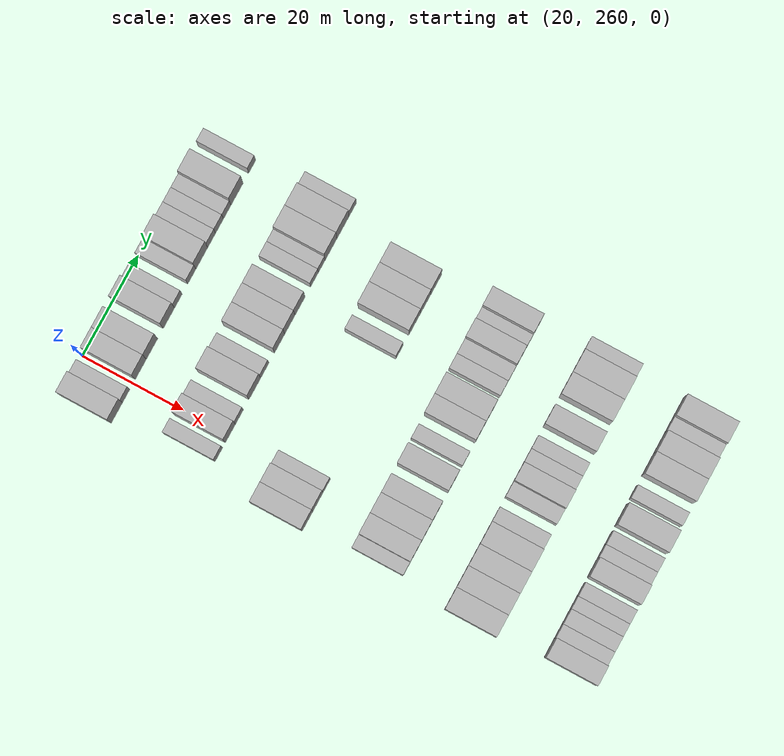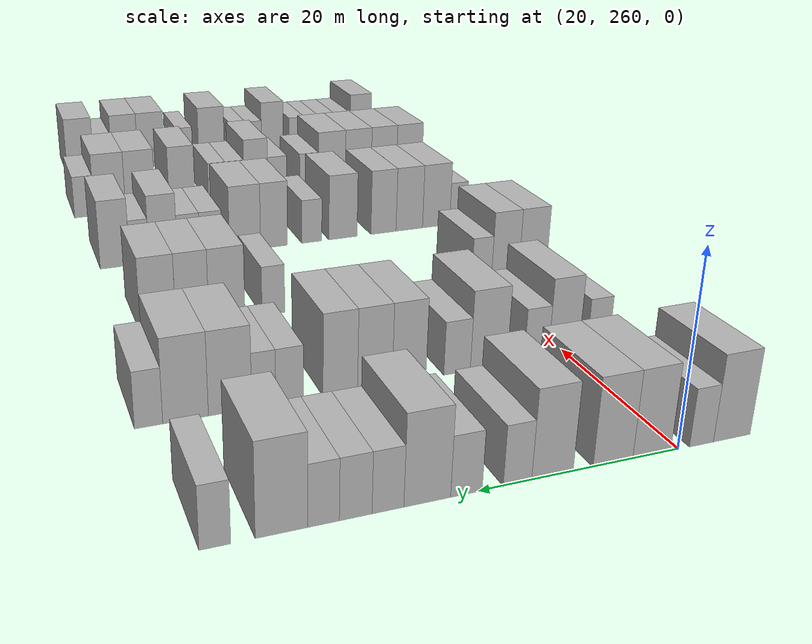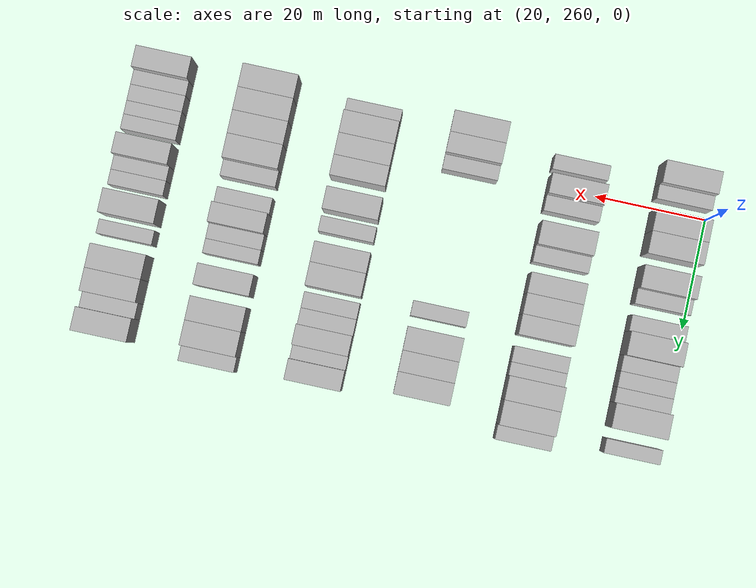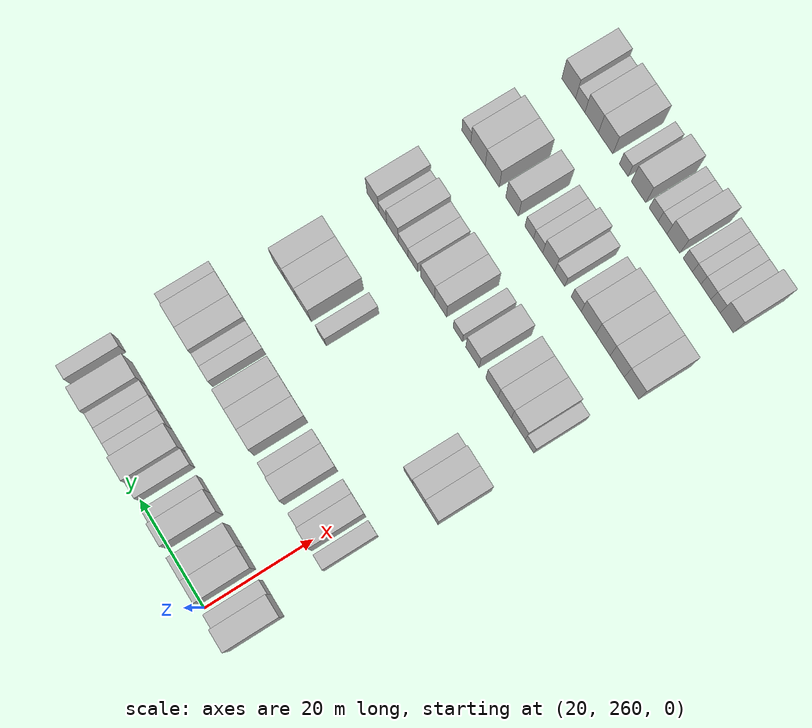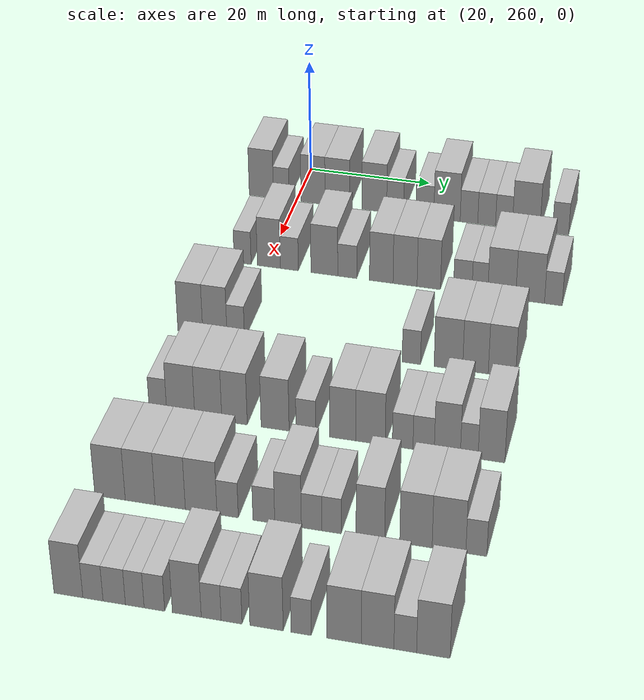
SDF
<sdf version="1.6">
 <world name="default">
  <model name="building_156">
   <static>1</static>
   <pose>25.0000 254.1607 0 0.000000 0.000000 0.000000</pose>
   <link name="link">
    <pose>0 0 4.50 0 0 0</pose>
    <collision name="collision"><geometry><box><size>10.0000 4.0426 9.0000</size></box></geometry></collision>
    <visual name="visual">
     <cast_shadows>0</cast_shadows>
     <geometry><box><size>10.0000 4.0426 9.0000</size></box></geometry>
     <material>
      <script>
       <uri>model://HANNAS_wall/materials/scripts</uri>
       <uri>model://HANNAS_wall/materials/textures</uri>
       <name>vrc/HANNAS_wall</name>
      </script>
     </material>
    </visual>
   </link>
  </model>
  <model name="building_157">
   <static>1</static>
   <pose>25.0000 257.4823 0 0.000000 0.000000 0.000000</pose>
   <link name="link">
    <pose>0 0 3.00 0 0 0</pose>
    <collision name="collision"><geometry><box><size>10.0000 2.6005 6.0000</size></box></geometry></collision>
    <visual name="visual">
     <cast_shadows>0</cast_shadows>
     <geometry><box><size>10.0000 2.6005 6.0000</size></box></geometry>
     <material>
      <script>
       <uri>model://HANNAS_wall/materials/scripts</uri>
       <uri>model://HANNAS_wall/materials/textures</uri>
       <name>vrc/HANNAS_wall</name>
      </script>
     </material>
    </visual>
   </link>
  </model>
  <model name="building_158">
   <static>1</static>
   <pose>25.0000 262.7792 0 0.000000 0.000000 0.000000</pose>
   <link name="link">
    <pose>0 0 4.50 0 0 0</pose>
    <collision name="collision"><geometry><box><size>10.0000 3.9933 9.0000</size></box></geometry></collision>
    <visual name="visual">
     <cast_shadows>0</cast_shadows>
     <geometry><box><size>10.0000 3.9933 9.0000</size></box></geometry>
     <material>
      <script>
       <uri>model://HANNAS_wall/materials/scripts</uri>
       <uri>model://HANNAS_wall/materials/textures</uri>
       <name>vrc/HANNAS_wall</name>
      </script>
     </material>
    </visual>
   </link>
  </model>
  <model name="building_159">
   <static>1</static>
   <pose>25.0000 266.8119 0 0.000000 0.000000 0.000000</pose>
   <link name="link">
    <pose>0 0 4.50 0 0 0</pose>
    <collision name="collision"><geometry><box><size>10.0000 4.0719 9.0000</size></box></geometry></collision>
    <visual name="visual">
     <cast_shadows>0</cast_shadows>
     <geometry><box><size>10.0000 4.0719 9.0000</size></box></geometry>
     <material>
      <script>
       <uri>model://HANNAS_wall/materials/scripts</uri>
       <uri>model://HANNAS_wall/materials/textures</uri>
       <name>vrc/HANNAS_wall</name>
      </script>
     </material>
    </visual>
   </link>
  </model>
  <model name="building_160">
   <static>1</static>
   <pose>25.0000 272.8907 0 0.000000 0.000000 0.000000</pose>
   <link name="link">
    <pose>0 0 4.50 0 0 0</pose>
    <collision name="collision"><geometry><box><size>10.0000 4.0857 9.0000</size></box></geometry></collision>
    <visual name="visual">
     <cast_shadows>0</cast_shadows>
     <geometry><box><size>10.0000 4.0857 9.0000</size></box></geometry>
     <material>
      <script>
       <uri>model://HANNAS_wall/materials/scripts</uri>
       <uri>model://HANNAS_wall/materials/textures</uri>
       <name>vrc/HANNAS_wall</name>
      </script>
     </material>
    </visual>
   </link>
  </model>
  <model name="building_161">
   <static>1</static>
   <pose>25.0000 276.3081 0 0.000000 0.000000 0.000000</pose>
   <link name="link">
    <pose>0 0 3.00 0 0 0</pose>
    <collision name="collision"><geometry><box><size>10.0000 2.7490 6.0000</size></box></geometry></collision>
    <visual name="visual">
     <cast_shadows>0</cast_shadows>
     <geometry><box><size>10.0000 2.7490 6.0000</size></box></geometry>
     <material>
      <script>
       <uri>model://HANNAS_wall/materials/scripts</uri>
       <uri>model://HANNAS_wall/materials/textures</uri>
       <name>vrc/HANNAS_wall</name>
      </script>
     </material>
    </visual>
   </link>
  </model>
  <model name="building_162">
   <static>1</static>
   <pose>25.0000 281.1556 0 0.000000 0.000000 0.000000</pose>
   <link name="link">
    <pose>0 0 3.00 0 0 0</pose>
    <collision name="collision"><geometry><box><size>10.0000 2.9460 6.0000</size></box></geometry></collision>
    <visual name="visual">
     <cast_shadows>0</cast_shadows>
     <geometry><box><size>10.0000 2.9460 6.0000</size></box></geometry>
     <material>
      <script>
       <uri>model://HANNAS_wall/materials/scripts</uri>
       <uri>model://HANNAS_wall/materials/textures</uri>
       <name>vrc/HANNAS_wall</name>
      </script>
     </material>
    </visual>
   </link>
  </model>
  <model name="building_163">
   <static>1</static>
   <pose>25.0000 284.7638 0 0.000000 0.000000 0.000000</pose>
   <link name="link">
    <pose>0 0 4.50 0 0 0</pose>
    <collision name="collision"><geometry><box><size>10.0000 4.2703 9.0000</size></box></geometry></collision>
    <visual name="visual">
     <cast_shadows>0</cast_shadows>
     <geometry><box><size>10.0000 4.2703 9.0000</size></box></geometry>
     <material>
      <script>
       <uri>model://HANNAS_wall/materials/scripts</uri>
       <uri>model://HANNAS_wall/materials/textures</uri>
       <name>vrc/HANNAS_wall</name>
      </script>
     </material>
    </visual>
   </link>
  </model>
  <model name="building_164">
   <static>1</static>
   <pose>25.0000 288.3192 0 0.000000 0.000000 0.000000</pose>
   <link name="link">
    <pose>0 0 3.00 0 0 0</pose>
    <collision name="collision"><geometry><box><size>10.0000 2.8406 6.0000</size></box></geometry></collision>
    <visual name="visual">
     <cast_shadows>0</cast_shadows>
     <geometry><box><size>10.0000 2.8406 6.0000</size></box></geometry>
     <material>
      <script>
       <uri>model://HANNAS_wall/materials/scripts</uri>
       <uri>model://HANNAS_wall/materials/textures</uri>
       <name>vrc/HANNAS_wall</name>
      </script>
     </material>
    </visual>
   </link>
  </model>
  <model name="building_165">
   <static>1</static>
   <pose>25.0000 291.1688 0 0.000000 0.000000 0.000000</pose>
   <link name="link">
    <pose>0 0 3.00 0 0 0</pose>
    <collision name="collision"><geometry><box><size>10.0000 2.8586 6.0000</size></box></geometry></collision>
    <visual name="visual">
     <cast_shadows>0</cast_shadows>
     <geometry><box><size>10.0000 2.8586 6.0000</size></box></geometry>
     <material>
      <script>
       <uri>model://HANNAS_wall/materials/scripts</uri>
       <uri>model://HANNAS_wall/materials/textures</uri>
       <name>vrc/HANNAS_wall</name>
      </script>
     </material>
    </visual>
   </link>
  </model>
  <model name="building_166">
   <static>1</static>
   <pose>25.0000 293.9554 0 0.000000 0.000000 0.000000</pose>
   <link name="link">
    <pose>0 0 3.00 0 0 0</pose>
    <collision name="collision"><geometry><box><size>10.0000 2.7146 6.0000</size></box></geometry></collision>
    <visual name="visual">
     <cast_shadows>0</cast_shadows>
     <geometry><box><size>10.0000 2.7146 6.0000</size></box></geometry>
     <material>
      <script>
       <uri>model://HANNAS_wall/materials/scripts</uri>
       <uri>model://HANNAS_wall/materials/textures</uri>
       <name>vrc/HANNAS_wall</name>
      </script>
     </material>
    </visual>
   </link>
  </model>
  <model name="building_167">
   <static>1</static>
   <pose>25.0000 297.5142 0 0.000000 0.000000 0.000000</pose>
   <link name="link">
    <pose>0 0 4.50 0 0 0</pose>
    <collision name="collision"><geometry><box><size>10.0000 4.4030 9.0000</size></box></geometry></collision>
    <visual name="visual">
     <cast_shadows>0</cast_shadows>
     <geometry><box><size>10.0000 4.4030 9.0000</size></box></geometry>
     <material>
      <script>
       <uri>model://HANNAS_wall/materials/scripts</uri>
       <uri>model://HANNAS_wall/materials/textures</uri>
       <name>vrc/HANNAS_wall</name>
      </script>
     </material>
    </visual>
   </link>
  </model>
  <model name="building_168">
   <static>1</static>
   <pose>25.0000 303.0005 0 0.000000 0.000000 0.000000</pose>
   <link name="link">
    <pose>0 0 3.00 0 0 0</pose>
    <collision name="collision"><geometry><box><size>10.0000 2.5696 6.0000</size></box></geometry></collision>
    <visual name="visual">
     <cast_shadows>0</cast_shadows>
     <geometry><box><size>10.0000 2.5696 6.0000</size></box></geometry>
     <material>
      <script>
       <uri>model://HANNAS_wall/materials/scripts</uri>
       <uri>model://HANNAS_wall/materials/textures</uri>
       <name>vrc/HANNAS_wall</name>
      </script>
     </material>
    </visual>
   </link>
  </model>
  <model name="building_327">
   <static>1</static>
   <pose>44.0000 256.2095 0 0.000000 0.000000 0.000000</pose>
   <link name="link">
    <pose>0 0 3.00 0 0 0</pose>
    <collision name="collision"><geometry><box><size>10.0000 2.7150 6.0000</size></box></geometry></collision>
    <visual name="visual">
     <cast_shadows>0</cast_shadows>
     <geometry><box><size>10.0000 2.7150 6.0000</size></box></geometry>
     <material>
      <script>
       <uri>model://HANNAS_wall/materials/scripts</uri>
       <uri>model://HANNAS_wall/materials/textures</uri>
       <name>vrc/HANNAS_wall</name>
      </script>
     </material>
    </visual>
   </link>
  </model>
  <model name="building_328">
   <static>1</static>
   <pose>44.0000 260.3939 0 0.000000 0.000000 0.000000</pose>
   <link name="link">
    <pose>0 0 4.50 0 0 0</pose>
    <collision name="collision"><geometry><box><size>10.0000 3.6539 9.0000</size></box></geometry></collision>
    <visual name="visual">
     <cast_shadows>0</cast_shadows>
     <geometry><box><size>10.0000 3.6539 9.0000</size></box></geometry>
     <material>
      <script>
       <uri>model://HANNAS_wall/materials/scripts</uri>
       <uri>model://HANNAS_wall/materials/textures</uri>
       <name>vrc/HANNAS_wall</name>
      </script>
     </material>
    </visual>
   </link>
  </model>
  <model name="building_329">
   <static>1</static>
   <pose>44.0000 263.6575 0 0.000000 0.000000 0.000000</pose>
   <link name="link">
    <pose>0 0 3.00 0 0 0</pose>
    <collision name="collision"><geometry><box><size>10.0000 2.8733 6.0000</size></box></geometry></collision>
    <visual name="visual">
     <cast_shadows>0</cast_shadows>
     <geometry><box><size>10.0000 2.8733 6.0000</size></box></geometry>
     <material>
      <script>
       <uri>model://HANNAS_wall/materials/scripts</uri>
       <uri>model://HANNAS_wall/materials/textures</uri>
       <name>vrc/HANNAS_wall</name>
      </script>
     </material>
    </visual>
   </link>
  </model>
  <model name="building_330">
   <static>1</static>
   <pose>44.0000 269.2099 0 0.000000 0.000000 0.000000</pose>
   <link name="link">
    <pose>0 0 4.50 0 0 0</pose>
    <collision name="collision"><geometry><box><size>10.0000 4.2316 9.0000</size></box></geometry></collision>
    <visual name="visual">
     <cast_shadows>0</cast_shadows>
     <geometry><box><size>10.0000 4.2316 9.0000</size></box></geometry>
     <material>
      <script>
       <uri>model://HANNAS_wall/materials/scripts</uri>
       <uri>model://HANNAS_wall/materials/textures</uri>
       <name>vrc/HANNAS_wall</name>
      </script>
     </material>
    </visual>
   </link>
  </model>
  <model name="building_331">
   <static>1</static>
   <pose>44.0000 272.8212 0 0.000000 0.000000 0.000000</pose>
   <link name="link">
    <pose>0 0 3.00 0 0 0</pose>
    <collision name="collision"><geometry><box><size>10.0000 2.9908 6.0000</size></box></geometry></collision>
    <visual name="visual">
     <cast_shadows>0</cast_shadows>
     <geometry><box><size>10.0000 2.9908 6.0000</size></box></geometry>
     <material>
      <script>
       <uri>model://HANNAS_wall/materials/scripts</uri>
       <uri>model://HANNAS_wall/materials/textures</uri>
       <name>vrc/HANNAS_wall</name>
      </script>
     </material>
    </visual>
   </link>
  </model>
  <model name="building_332">
   <static>1</static>
   <pose>44.0000 278.1631 0 0.000000 0.000000 0.000000</pose>
   <link name="link">
    <pose>0 0 4.50 0 0 0</pose>
    <collision name="collision"><geometry><box><size>10.0000 3.6931 9.0000</size></box></geometry></collision>
    <visual name="visual">
     <cast_shadows>0</cast_shadows>
     <geometry><box><size>10.0000 3.6931 9.0000</size></box></geometry>
     <material>
      <script>
       <uri>model://HANNAS_wall/materials/scripts</uri>
       <uri>model://HANNAS_wall/materials/textures</uri>
       <name>vrc/HANNAS_wall</name>
      </script>
     </material>
    </visual>
   </link>
  </model>
  <model name="building_333">
   <static>1</static>
   <pose>44.0000 281.8770 0 0.000000 0.000000 0.000000</pose>
   <link name="link">
    <pose>0 0 4.50 0 0 0</pose>
    <collision name="collision"><geometry><box><size>10.0000 3.7349 9.0000</size></box></geometry></collision>
    <visual name="visual">
     <cast_shadows>0</cast_shadows>
     <geometry><box><size>10.0000 3.7349 9.0000</size></box></geometry>
     <material>
      <script>
       <uri>model://HANNAS_wall/materials/scripts</uri>
       <uri>model://HANNAS_wall/materials/textures</uri>
       <name>vrc/HANNAS_wall</name>
      </script>
     </material>
    </visual>
   </link>
  </model>
  <model name="building_334">
   <static>1</static>
   <pose>44.0000 285.5641 0 0.000000 0.000000 0.000000</pose>
   <link name="link">
    <pose>0 0 4.50 0 0 0</pose>
    <collision name="collision"><geometry><box><size>10.0000 3.6392 9.0000</size></box></geometry></collision>
    <visual name="visual">
     <cast_shadows>0</cast_shadows>
     <geometry><box><size>10.0000 3.6392 9.0000</size></box></geometry>
     <material>
      <script>
       <uri>model://HANNAS_wall/materials/scripts</uri>
       <uri>model://HANNAS_wall/materials/textures</uri>
       <name>vrc/HANNAS_wall</name>
      </script>
     </material>
    </visual>
   </link>
  </model>
  <model name="building_335">
   <static>1</static>
   <pose>44.0000 290.8079 0 0.000000 0.000000 0.000000</pose>
   <link name="link">
    <pose>0 0 3.00 0 0 0</pose>
    <collision name="collision"><geometry><box><size>10.0000 2.8483 6.0000</size></box></geometry></collision>
    <visual name="visual">
     <cast_shadows>0</cast_shadows>
     <geometry><box><size>10.0000 2.8483 6.0000</size></box></geometry>
     <material>
      <script>
       <uri>model://HANNAS_wall/materials/scripts</uri>
       <uri>model://HANNAS_wall/materials/textures</uri>
       <name>vrc/HANNAS_wall</name>
      </script>
     </material>
    </visual>
   </link>
  </model>
  <model name="building_336">
   <static>1</static>
   <pose>44.0000 293.4451 0 0.000000 0.000000 0.000000</pose>
   <link name="link">
    <pose>0 0 3.00 0 0 0</pose>
    <collision name="collision"><geometry><box><size>10.0000 2.4262 6.0000</size></box></geometry></collision>
    <visual name="visual">
     <cast_shadows>0</cast_shadows>
     <geometry><box><size>10.0000 2.4262 6.0000</size></box></geometry>
     <material>
      <script>
       <uri>model://HANNAS_wall/materials/scripts</uri>
       <uri>model://HANNAS_wall/materials/textures</uri>
       <name>vrc/HANNAS_wall</name>
      </script>
     </material>
    </visual>
   </link>
  </model>
  <model name="building_337">
   <static>1</static>
   <pose>44.0000 296.8018 0 0.000000 0.000000 0.000000</pose>
   <link name="link">
    <pose>0 0 4.50 0 0 0</pose>
    <collision name="collision"><geometry><box><size>10.0000 4.2873 9.0000</size></box></geometry></collision>
    <visual name="visual">
     <cast_shadows>0</cast_shadows>
     <geometry><box><size>10.0000 4.2873 9.0000</size></box></geometry>
     <material>
      <script>
       <uri>model://HANNAS_wall/materials/scripts</uri>
       <uri>model://HANNAS_wall/materials/textures</uri>
       <name>vrc/HANNAS_wall</name>
      </script>
     </material>
    </visual>
   </link>
  </model>
  <model name="building_338">
   <static>1</static>
   <pose>44.0000 301.1433 0 0.000000 0.000000 0.000000</pose>
   <link name="link">
    <pose>0 0 4.50 0 0 0</pose>
    <collision name="collision"><geometry><box><size>10.0000 4.3958 9.0000</size></box></geometry></collision>
    <visual name="visual">
     <cast_shadows>0</cast_shadows>
     <geometry><box><size>10.0000 4.3958 9.0000</size></box></geometry>
     <material>
      <script>
       <uri>model://HANNAS_wall/materials/scripts</uri>
       <uri>model://HANNAS_wall/materials/textures</uri>
       <name>vrc/HANNAS_wall</name>
      </script>
     </material>
    </visual>
   </link>
  </model>
  <model name="building_339">
   <static>1</static>
   <pose>44.0000 304.6852 0 0.000000 0.000000 0.000000</pose>
   <link name="link">
    <pose>0 0 3.00 0 0 0</pose>
    <collision name="collision"><geometry><box><size>10.0000 2.6880 6.0000</size></box></geometry></collision>
    <visual name="visual">
     <cast_shadows>0</cast_shadows>
     <geometry><box><size>10.0000 2.6880 6.0000</size></box></geometry>
     <material>
      <script>
       <uri>model://HANNAS_wall/materials/scripts</uri>
       <uri>model://HANNAS_wall/materials/textures</uri>
       <name>vrc/HANNAS_wall</name>
      </script>
     </material>
    </visual>
   </link>
  </model>
  <model name="building_503">
   <static>1</static>
   <pose>63.0000 253.3827 0 0.000000 0.000000 0.000000</pose>
   <link name="link">
    <pose>0 0 4.50 0 0 0</pose>
    <collision name="collision"><geometry><box><size>10.0000 3.8318 9.0000</size></box></geometry></collision>
    <visual name="visual">
     <cast_shadows>0</cast_shadows>
     <geometry><box><size>10.0000 3.8318 9.0000</size></box></geometry>
     <material>
      <script>
       <uri>model://HANNAS_wall/materials/scripts</uri>
       <uri>model://HANNAS_wall/materials/textures</uri>
       <name>vrc/HANNAS_wall</name>
      </script>
     </material>
    </visual>
   </link>
  </model>
  <model name="building_504">
   <static>1</static>
   <pose>63.0000 257.1570 0 0.000000 0.000000 0.000000</pose>
   <link name="link">
    <pose>0 0 4.50 0 0 0</pose>
    <collision name="collision"><geometry><box><size>10.0000 3.7167 9.0000</size></box></geometry></collision>
    <visual name="visual">
     <cast_shadows>0</cast_shadows>
     <geometry><box><size>10.0000 3.7167 9.0000</size></box></geometry>
     <material>
      <script>
       <uri>model://HANNAS_wall/materials/scripts</uri>
       <uri>model://HANNAS_wall/materials/textures</uri>
       <name>vrc/HANNAS_wall</name>
      </script>
     </material>
    </visual>
   </link>
  </model>
  <model name="building_505">
   <static>1</static>
   <pose>63.0000 260.3486 0 0.000000 0.000000 0.000000</pose>
   <link name="link">
    <pose>0 0 3.00 0 0 0</pose>
    <collision name="collision"><geometry><box><size>10.0000 2.6665 6.0000</size></box></geometry></collision>
    <visual name="visual">
     <cast_shadows>0</cast_shadows>
     <geometry><box><size>10.0000 2.6665 6.0000</size></box></geometry>
     <material>
      <script>
       <uri>model://HANNAS_wall/materials/scripts</uri>
       <uri>model://HANNAS_wall/materials/textures</uri>
       <name>vrc/HANNAS_wall</name>
      </script>
     </material>
    </visual>
   </link>
  </model>
  <model name="building_506">
   <static>1</static>
   <pose>63.0000 286.7520 0 0.000000 0.000000 0.000000</pose>
   <link name="link">
    <pose>0 0 3.00 0 0 0</pose>
    <collision name="collision"><geometry><box><size>10.0000 2.7134 6.0000</size></box></geometry></collision>
    <visual name="visual">
     <cast_shadows>0</cast_shadows>
     <geometry><box><size>10.0000 2.7134 6.0000</size></box></geometry>
     <material>
      <script>
       <uri>model://HANNAS_wall/materials/scripts</uri>
       <uri>model://HANNAS_wall/materials/textures</uri>
       <name>vrc/HANNAS_wall</name>
      </script>
     </material>
    </visual>
   </link>
  </model>
  <model name="building_507">
   <static>1</static>
   <pose>63.0000 292.2062 0 0.000000 0.000000 0.000000</pose>
   <link name="link">
    <pose>0 0 4.50 0 0 0</pose>
    <collision name="collision"><geometry><box><size>10.0000 4.1950 9.0000</size></box></geometry></collision>
    <visual name="visual">
     <cast_shadows>0</cast_shadows>
     <geometry><box><size>10.0000 4.1950 9.0000</size></box></geometry>
     <material>
      <script>
       <uri>model://HANNAS_wall/materials/scripts</uri>
       <uri>model://HANNAS_wall/materials/textures</uri>
       <name>vrc/HANNAS_wall</name>
      </script>
     </material>
    </visual>
   </link>
  </model>
  <model name="building_508">
   <static>1</static>
   <pose>63.0000 296.1792 0 0.000000 0.000000 0.000000</pose>
   <link name="link">
    <pose>0 0 4.50 0 0 0</pose>
    <collision name="collision"><geometry><box><size>10.0000 3.7510 9.0000</size></box></geometry></collision>
    <visual name="visual">
     <cast_shadows>0</cast_shadows>
     <geometry><box><size>10.0000 3.7510 9.0000</size></box></geometry>
     <material>
      <script>
       <uri>model://HANNAS_wall/materials/scripts</uri>
       <uri>model://HANNAS_wall/materials/textures</uri>
       <name>vrc/HANNAS_wall</name>
      </script>
     </material>
    </visual>
   </link>
  </model>
  <model name="building_509">
   <static>1</static>
   <pose>63.0000 300.0471 0 0.000000 0.000000 0.000000</pose>
   <link name="link">
    <pose>0 0 4.50 0 0 0</pose>
    <collision name="collision"><geometry><box><size>10.0000 3.9847 9.0000</size></box></geometry></collision>
    <visual name="visual">
     <cast_shadows>0</cast_shadows>
     <geometry><box><size>10.0000 3.9847 9.0000</size></box></geometry>
     <material>
      <script>
       <uri>model://HANNAS_wall/materials/scripts</uri>
       <uri>model://HANNAS_wall/materials/textures</uri>
       <name>vrc/HANNAS_wall</name>
      </script>
     </material>
    </visual>
   </link>
  </model>
  <model name="building_657">
   <static>1</static>
   <pose>82.0000 254.2517 0 0.000000 0.000000 0.000000</pose>
   <link name="link">
    <pose>0 0 3.00 0 0 0</pose>
    <collision name="collision"><geometry><box><size>10.0000 2.5629 6.0000</size></box></geometry></collision>
    <visual name="visual">
     <cast_shadows>0</cast_shadows>
     <geometry><box><size>10.0000 2.5629 6.0000</size></box></geometry>
     <material>
      <script>
       <uri>model://HANNAS_wall/materials/scripts</uri>
       <uri>model://HANNAS_wall/materials/textures</uri>
       <name>vrc/HANNAS_wall</name>
      </script>
     </material>
    </visual>
   </link>
  </model>
  <model name="building_658">
   <static>1</static>
   <pose>82.0000 257.5846 0 0.000000 0.000000 0.000000</pose>
   <link name="link">
    <pose>0 0 4.50 0 0 0</pose>
    <collision name="collision"><geometry><box><size>10.0000 4.1028 9.0000</size></box></geometry></collision>
    <visual name="visual">
     <cast_shadows>0</cast_shadows>
     <geometry><box><size>10.0000 4.1028 9.0000</size></box></geometry>
     <material>
      <script>
       <uri>model://HANNAS_wall/materials/scripts</uri>
       <uri>model://HANNAS_wall/materials/textures</uri>
       <name>vrc/HANNAS_wall</name>
      </script>
     </material>
    </visual>
   </link>
  </model>
  <model name="building_659">
   <static>1</static>
   <pose>82.0000 261.6069 0 0.000000 0.000000 0.000000</pose>
   <link name="link">
    <pose>0 0 4.50 0 0 0</pose>
    <collision name="collision"><geometry><box><size>10.0000 3.9419 9.0000</size></box></geometry></collision>
    <visual name="visual">
     <cast_shadows>0</cast_shadows>
     <geometry><box><size>10.0000 3.9419 9.0000</size></box></geometry>
     <material>
      <script>
       <uri>model://HANNAS_wall/materials/scripts</uri>
       <uri>model://HANNAS_wall/materials/textures</uri>
       <name>vrc/HANNAS_wall</name>
      </script>
     </material>
    </visual>
   </link>
  </model>
  <model name="building_660">
   <static>1</static>
   <pose>82.0000 265.4177 0 0.000000 0.000000 0.000000</pose>
   <link name="link">
    <pose>0 0 4.50 0 0 0</pose>
    <collision name="collision"><geometry><box><size>10.0000 3.6796 9.0000</size></box></geometry></collision>
    <visual name="visual">
     <cast_shadows>0</cast_shadows>
     <geometry><box><size>10.0000 3.6796 9.0000</size></box></geometry>
     <material>
      <script>
       <uri>model://HANNAS_wall/materials/scripts</uri>
       <uri>model://HANNAS_wall/materials/textures</uri>
       <name>vrc/HANNAS_wall</name>
      </script>
     </material>
    </visual>
   </link>
  </model>
  <model name="building_661">
   <static>1</static>
   <pose>82.0000 271.2723 0 0.000000 0.000000 0.000000</pose>
   <link name="link">
    <pose>0 0 4.50 0 0 0</pose>
    <collision name="collision"><geometry><box><size>10.0000 4.0297 9.0000</size></box></geometry></collision>
    <visual name="visual">
     <cast_shadows>0</cast_shadows>
     <geometry><box><size>10.0000 4.0297 9.0000</size></box></geometry>
     <material>
      <script>
       <uri>model://HANNAS_wall/materials/scripts</uri>
       <uri>model://HANNAS_wall/materials/textures</uri>
       <name>vrc/HANNAS_wall</name>
      </script>
     </material>
    </visual>
   </link>
  </model>
  <model name="building_662">
   <static>1</static>
   <pose>82.0000 275.6874 0 0.000000 0.000000 0.000000</pose>
   <link name="link">
    <pose>0 0 3.00 0 0 0</pose>
    <collision name="collision"><geometry><box><size>10.0000 2.8004 6.0000</size></box></geometry></collision>
    <visual name="visual">
     <cast_shadows>0</cast_shadows>
     <geometry><box><size>10.0000 2.8004 6.0000</size></box></geometry>
     <material>
      <script>
       <uri>model://HANNAS_wall/materials/scripts</uri>
       <uri>model://HANNAS_wall/materials/textures</uri>
       <name>vrc/HANNAS_wall</name>
      </script>
     </material>
    </visual>
   </link>
  </model>
  <model name="building_663">
   <static>1</static>
   <pose>82.0000 280.9317 0 0.000000 0.000000 0.000000</pose>
   <link name="link">
    <pose>0 0 4.50 0 0 0</pose>
    <collision name="collision"><geometry><box><size>10.0000 3.6882 9.0000</size></box></geometry></collision>
    <visual name="visual">
     <cast_shadows>0</cast_shadows>
     <geometry><box><size>10.0000 3.6882 9.0000</size></box></geometry>
     <material>
      <script>
       <uri>model://HANNAS_wall/materials/scripts</uri>
       <uri>model://HANNAS_wall/materials/textures</uri>
       <name>vrc/HANNAS_wall</name>
      </script>
     </material>
    </visual>
   </link>
  </model>
  <model name="building_664">
   <static>1</static>
   <pose>82.0000 284.8691 0 0.000000 0.000000 0.000000</pose>
   <link name="link">
    <pose>0 0 4.50 0 0 0</pose>
    <collision name="collision"><geometry><box><size>10.0000 4.1865 9.0000</size></box></geometry></collision>
    <visual name="visual">
     <cast_shadows>0</cast_shadows>
     <geometry><box><size>10.0000 4.1865 9.0000</size></box></geometry>
     <material>
      <script>
       <uri>model://HANNAS_wall/materials/scripts</uri>
       <uri>model://HANNAS_wall/materials/textures</uri>
       <name>vrc/HANNAS_wall</name>
      </script>
     </material>
    </visual>
   </link>
  </model>
  <model name="building_665">
   <static>1</static>
   <pose>82.0000 289.4147 0 0.000000 0.000000 0.000000</pose>
   <link name="link">
    <pose>0 0 3.00 0 0 0</pose>
    <collision name="collision"><geometry><box><size>10.0000 2.9047 6.0000</size></box></geometry></collision>
    <visual name="visual">
     <cast_shadows>0</cast_shadows>
     <geometry><box><size>10.0000 2.9047 6.0000</size></box></geometry>
     <material>
      <script>
       <uri>model://HANNAS_wall/materials/scripts</uri>
       <uri>model://HANNAS_wall/materials/textures</uri>
       <name>vrc/HANNAS_wall</name>
      </script>
     </material>
    </visual>
   </link>
  </model>
  <model name="building_666">
   <static>1</static>
   <pose>82.0000 292.3557 0 0.000000 0.000000 0.000000</pose>
   <link name="link">
    <pose>0 0 3.00 0 0 0</pose>
    <collision name="collision"><geometry><box><size>10.0000 2.9772 6.0000</size></box></geometry></collision>
    <visual name="visual">
     <cast_shadows>0</cast_shadows>
     <geometry><box><size>10.0000 2.9772 6.0000</size></box></geometry>
     <material>
      <script>
       <uri>model://HANNAS_wall/materials/scripts</uri>
       <uri>model://HANNAS_wall/materials/textures</uri>
       <name>vrc/HANNAS_wall</name>
      </script>
     </material>
    </visual>
   </link>
  </model>
  <model name="building_667">
   <static>1</static>
   <pose>82.0000 295.6672 0 0.000000 0.000000 0.000000</pose>
   <link name="link">
    <pose>0 0 4.50 0 0 0</pose>
    <collision name="collision"><geometry><box><size>10.0000 3.6458 9.0000</size></box></geometry></collision>
    <visual name="visual">
     <cast_shadows>0</cast_shadows>
     <geometry><box><size>10.0000 3.6458 9.0000</size></box></geometry>
     <material>
      <script>
       <uri>model://HANNAS_wall/materials/scripts</uri>
       <uri>model://HANNAS_wall/materials/textures</uri>
       <name>vrc/HANNAS_wall</name>
      </script>
     </material>
    </visual>
   </link>
  </model>
  <model name="building_668">
   <static>1</static>
   <pose>82.0000 298.7204 0 0.000000 0.000000 0.000000</pose>
   <link name="link">
    <pose>0 0 3.00 0 0 0</pose>
    <collision name="collision"><geometry><box><size>10.0000 2.4606 6.0000</size></box></geometry></collision>
    <visual name="visual">
     <cast_shadows>0</cast_shadows>
     <geometry><box><size>10.0000 2.4606 6.0000</size></box></geometry>
     <material>
      <script>
       <uri>model://HANNAS_wall/materials/scripts</uri>
       <uri>model://HANNAS_wall/materials/textures</uri>
       <name>vrc/HANNAS_wall</name>
      </script>
     </material>
    </visual>
   </link>
  </model>
  <model name="building_669">
   <static>1</static>
   <pose>82.0000 301.8058 0 0.000000 0.000000 0.000000</pose>
   <link name="link">
    <pose>0 0 4.50 0 0 0</pose>
    <collision name="collision"><geometry><box><size>10.0000 3.7102 9.0000</size></box></geometry></collision>
    <visual name="visual">
     <cast_shadows>0</cast_shadows>
     <geometry><box><size>10.0000 3.7102 9.0000</size></box></geometry>
     <material>
      <script>
       <uri>model://HANNAS_wall/materials/scripts</uri>
       <uri>model://HANNAS_wall/materials/textures</uri>
       <name>vrc/HANNAS_wall</name>
      </script>
     </material>
    </visual>
   </link>
  </model>
  <model name="building_834">
   <static>1</static>
   <pose>101.0000 253.4122 0 0.000000 0.000000 0.000000</pose>
   <link name="link">
    <pose>0 0 4.50 0 0 0</pose>
    <collision name="collision"><geometry><box><size>10.0000 4.2534 9.0000</size></box></geometry></collision>
    <visual name="visual">
     <cast_shadows>0</cast_shadows>
     <geometry><box><size>10.0000 4.2534 9.0000</size></box></geometry>
     <material>
      <script>
       <uri>model://HANNAS_wall/materials/scripts</uri>
       <uri>model://HANNAS_wall/materials/textures</uri>
       <name>vrc/HANNAS_wall</name>
      </script>
     </material>
    </visual>
   </link>
  </model>
  <model name="building_835">
   <static>1</static>
   <pose>101.0000 257.6232 0 0.000000 0.000000 0.000000</pose>
   <link name="link">
    <pose>0 0 4.50 0 0 0</pose>
    <collision name="collision"><geometry><box><size>10.0000 4.1684 9.0000</size></box></geometry></collision>
    <visual name="visual">
     <cast_shadows>0</cast_shadows>
     <geometry><box><size>10.0000 4.1684 9.0000</size></box></geometry>
     <material>
      <script>
       <uri>model://HANNAS_wall/materials/scripts</uri>
       <uri>model://HANNAS_wall/materials/textures</uri>
       <name>vrc/HANNAS_wall</name>
      </script>
     </material>
    </visual>
   </link>
  </model>
  <model name="building_836">
   <static>1</static>
   <pose>101.0000 261.8037 0 0.000000 0.000000 0.000000</pose>
   <link name="link">
    <pose>0 0 4.50 0 0 0</pose>
    <collision name="collision"><geometry><box><size>10.0000 4.1928 9.0000</size></box></geometry></collision>
    <visual name="visual">
     <cast_shadows>0</cast_shadows>
     <geometry><box><size>10.0000 4.1928 9.0000</size></box></geometry>
     <material>
      <script>
       <uri>model://HANNAS_wall/materials/scripts</uri>
       <uri>model://HANNAS_wall/materials/textures</uri>
       <name>vrc/HANNAS_wall</name>
      </script>
     </material>
    </visual>
   </link>
  </model>
  <model name="building_837">
   <static>1</static>
   <pose>101.0000 266.0788 0 0.000000 0.000000 0.000000</pose>
   <link name="link">
    <pose>0 0 4.50 0 0 0</pose>
    <collision name="collision"><geometry><box><size>10.0000 4.3574 9.0000</size></box></geometry></collision>
    <visual name="visual">
     <cast_shadows>0</cast_shadows>
     <geometry><box><size>10.0000 4.3574 9.0000</size></box></geometry>
     <material>
      <script>
       <uri>model://HANNAS_wall/materials/scripts</uri>
       <uri>model://HANNAS_wall/materials/textures</uri>
       <name>vrc/HANNAS_wall</name>
      </script>
     </material>
    </visual>
   </link>
  </model>
  <model name="building_838">
   <static>1</static>
   <pose>101.0000 269.7223 0 0.000000 0.000000 0.000000</pose>
   <link name="link">
    <pose>0 0 3.00 0 0 0</pose>
    <collision name="collision"><geometry><box><size>10.0000 2.9295 6.0000</size></box></geometry></collision>
    <visual name="visual">
     <cast_shadows>0</cast_shadows>
     <geometry><box><size>10.0000 2.9295 6.0000</size></box></geometry>
     <material>
      <script>
       <uri>model://HANNAS_wall/materials/scripts</uri>
       <uri>model://HANNAS_wall/materials/textures</uri>
       <name>vrc/HANNAS_wall</name>
      </script>
     </material>
    </visual>
   </link>
  </model>
  <model name="building_839">
   <static>1</static>
   <pose>101.0000 274.6753 0 0.000000 0.000000 0.000000</pose>
   <link name="link">
    <pose>0 0 3.00 0 0 0</pose>
    <collision name="collision"><geometry><box><size>10.0000 2.9764 6.0000</size></box></geometry></collision>
    <visual name="visual">
     <cast_shadows>0</cast_shadows>
     <geometry><box><size>10.0000 2.9764 6.0000</size></box></geometry>
     <material>
      <script>
       <uri>model://HANNAS_wall/materials/scripts</uri>
       <uri>model://HANNAS_wall/materials/textures</uri>
       <name>vrc/HANNAS_wall</name>
      </script>
     </material>
    </visual>
   </link>
  </model>
  <model name="building_840">
   <static>1</static>
   <pose>101.0000 277.9687 0 0.000000 0.000000 0.000000</pose>
   <link name="link">
    <pose>0 0 4.50 0 0 0</pose>
    <collision name="collision"><geometry><box><size>10.0000 3.6105 9.0000</size></box></geometry></collision>
    <visual name="visual">
     <cast_shadows>0</cast_shadows>
     <geometry><box><size>10.0000 3.6105 9.0000</size></box></geometry>
     <material>
      <script>
       <uri>model://HANNAS_wall/materials/scripts</uri>
       <uri>model://HANNAS_wall/materials/textures</uri>
       <name>vrc/HANNAS_wall</name>
      </script>
     </material>
    </visual>
   </link>
  </model>
  <model name="building_841">
   <static>1</static>
   <pose>101.0000 281.1671 0 0.000000 0.000000 0.000000</pose>
   <link name="link">
    <pose>0 0 3.00 0 0 0</pose>
    <collision name="collision"><geometry><box><size>10.0000 2.7863 6.0000</size></box></geometry></collision>
    <visual name="visual">
     <cast_shadows>0</cast_shadows>
     <geometry><box><size>10.0000 2.7863 6.0000</size></box></geometry>
     <material>
      <script>
       <uri>model://HANNAS_wall/materials/scripts</uri>
       <uri>model://HANNAS_wall/materials/textures</uri>
       <name>vrc/HANNAS_wall</name>
      </script>
     </material>
    </visual>
   </link>
  </model>
  <model name="building_842">
   <static>1</static>
   <pose>101.0000 283.8536 0 0.000000 0.000000 0.000000</pose>
   <link name="link">
    <pose>0 0 3.00 0 0 0</pose>
    <collision name="collision"><geometry><box><size>10.0000 2.5866 6.0000</size></box></geometry></collision>
    <visual name="visual">
     <cast_shadows>0</cast_shadows>
     <geometry><box><size>10.0000 2.5866 6.0000</size></box></geometry>
     <material>
      <script>
       <uri>model://HANNAS_wall/materials/scripts</uri>
       <uri>model://HANNAS_wall/materials/textures</uri>
       <name>vrc/HANNAS_wall</name>
      </script>
     </material>
    </visual>
   </link>
  </model>
  <model name="building_843">
   <static>1</static>
   <pose>101.0000 289.0644 0 0.000000 0.000000 0.000000</pose>
   <link name="link">
    <pose>0 0 4.50 0 0 0</pose>
    <collision name="collision"><geometry><box><size>10.0000 3.8350 9.0000</size></box></geometry></collision>
    <visual name="visual">
     <cast_shadows>0</cast_shadows>
     <geometry><box><size>10.0000 3.8350 9.0000</size></box></geometry>
     <material>
      <script>
       <uri>model://HANNAS_wall/materials/scripts</uri>
       <uri>model://HANNAS_wall/materials/textures</uri>
       <name>vrc/HANNAS_wall</name>
      </script>
     </material>
    </visual>
   </link>
  </model>
  <model name="building_844">
   <static>1</static>
   <pose>101.0000 295.1316 0 0.000000 0.000000 0.000000</pose>
   <link name="link">
    <pose>0 0 4.50 0 0 0</pose>
    <collision name="collision"><geometry><box><size>10.0000 4.2994 9.0000</size></box></geometry></collision>
    <visual name="visual">
     <cast_shadows>0</cast_shadows>
     <geometry><box><size>10.0000 4.2994 9.0000</size></box></geometry>
     <material>
      <script>
       <uri>model://HANNAS_wall/materials/scripts</uri>
       <uri>model://HANNAS_wall/materials/textures</uri>
       <name>vrc/HANNAS_wall</name>
      </script>
     </material>
    </visual>
   </link>
  </model>
  <model name="building_845">
   <static>1</static>
   <pose>101.0000 299.5086 0 0.000000 0.000000 0.000000</pose>
   <link name="link">
    <pose>0 0 4.50 0 0 0</pose>
    <collision name="collision"><geometry><box><size>10.0000 4.4547 9.0000</size></box></geometry></collision>
    <visual name="visual">
     <cast_shadows>0</cast_shadows>
     <geometry><box><size>10.0000 4.4547 9.0000</size></box></geometry>
     <material>
      <script>
       <uri>model://HANNAS_wall/materials/scripts</uri>
       <uri>model://HANNAS_wall/materials/textures</uri>
       <name>vrc/HANNAS_wall</name>
      </script>
     </material>
    </visual>
   </link>
  </model>
  <model name="building_846">
   <static>1</static>
   <pose>101.0000 303.1122 0 0.000000 0.000000 0.000000</pose>
   <link name="link">
    <pose>0 0 3.00 0 0 0</pose>
    <collision name="collision"><geometry><box><size>10.0000 2.7525 6.0000</size></box></geometry></collision>
    <visual name="visual">
     <cast_shadows>0</cast_shadows>
     <geometry><box><size>10.0000 2.7525 6.0000</size></box></geometry>
     <material>
      <script>
       <uri>model://HANNAS_wall/materials/scripts</uri>
       <uri>model://HANNAS_wall/materials/textures</uri>
       <name>vrc/HANNAS_wall</name>
      </script>
     </material>
    </visual>
   </link>
  </model>
  <model name="building_1006">
   <static>1</static>
   <pose>120.0000 254.1354 0 0.000000 0.000000 0.000000</pose>
   <link name="link">
    <pose>0 0 4.50 0 0 0</pose>
    <collision name="collision"><geometry><box><size>10.0000 3.8408 9.0000</size></box></geometry></collision>
    <visual name="visual">
     <cast_shadows>0</cast_shadows>
     <geometry><box><size>10.0000 3.8408 9.0000</size></box></geometry>
     <material>
      <script>
       <uri>model://HANNAS_wall/materials/scripts</uri>
       <uri>model://HANNAS_wall/materials/textures</uri>
       <name>vrc/HANNAS_wall</name>
      </script>
     </material>
    </visual>
   </link>
  </model>
  <model name="building_1007">
   <static>1</static>
   <pose>120.0000 257.3928 0 0.000000 0.000000 0.000000</pose>
   <link name="link">
    <pose>0 0 3.00 0 0 0</pose>
    <collision name="collision"><geometry><box><size>10.0000 2.6739 6.0000</size></box></geometry></collision>
    <visual name="visual">
     <cast_shadows>0</cast_shadows>
     <geometry><box><size>10.0000 2.6739 6.0000</size></box></geometry>
     <material>
      <script>
       <uri>model://HANNAS_wall/materials/scripts</uri>
       <uri>model://HANNAS_wall/materials/textures</uri>
       <name>vrc/HANNAS_wall</name>
      </script>
     </material>
    </visual>
   </link>
  </model>
  <model name="building_1008">
   <static>1</static>
   <pose>120.0000 260.2055 0 0.000000 0.000000 0.000000</pose>
   <link name="link">
    <pose>0 0 3.00 0 0 0</pose>
    <collision name="collision"><geometry><box><size>10.0000 2.9516 6.0000</size></box></geometry></collision>
    <visual name="visual">
     <cast_shadows>0</cast_shadows>
     <geometry><box><size>10.0000 2.9516 6.0000</size></box></geometry>
     <material>
      <script>
       <uri>model://HANNAS_wall/materials/scripts</uri>
       <uri>model://HANNAS_wall/materials/textures</uri>
       <name>vrc/HANNAS_wall</name>
      </script>
     </material>
    </visual>
   </link>
  </model>
  <model name="building_1009">
   <static>1</static>
   <pose>120.0000 262.9124 0 0.000000 0.000000 0.000000</pose>
   <link name="link">
    <pose>0 0 3.00 0 0 0</pose>
    <collision name="collision"><geometry><box><size>10.0000 2.4622 6.0000</size></box></geometry></collision>
    <visual name="visual">
     <cast_shadows>0</cast_shadows>
     <geometry><box><size>10.0000 2.4622 6.0000</size></box></geometry>
     <material>
      <script>
       <uri>model://HANNAS_wall/materials/scripts</uri>
       <uri>model://HANNAS_wall/materials/textures</uri>
       <name>vrc/HANNAS_wall</name>
      </script>
     </material>
    </visual>
   </link>
  </model>
  <model name="building_1010">
   <static>1</static>
   <pose>120.0000 265.4933 0 0.000000 0.000000 0.000000</pose>
   <link name="link">
    <pose>0 0 3.00 0 0 0</pose>
    <collision name="collision"><geometry><box><size>10.0000 2.6996 6.0000</size></box></geometry></collision>
    <visual name="visual">
     <cast_shadows>0</cast_shadows>
     <geometry><box><size>10.0000 2.6996 6.0000</size></box></geometry>
     <material>
      <script>
       <uri>model://HANNAS_wall/materials/scripts</uri>
       <uri>model://HANNAS_wall/materials/textures</uri>
       <name>vrc/HANNAS_wall</name>
      </script>
     </material>
    </visual>
   </link>
  </model>
  <model name="building_1011">
   <static>1</static>
   <pose>120.0000 269.7278 0 0.000000 0.000000 0.000000</pose>
   <link name="link">
    <pose>0 0 4.50 0 0 0</pose>
    <collision name="collision"><geometry><box><size>10.0000 3.7693 9.0000</size></box></geometry></collision>
    <visual name="visual">
     <cast_shadows>0</cast_shadows>
     <geometry><box><size>10.0000 3.7693 9.0000</size></box></geometry>
     <material>
      <script>
       <uri>model://HANNAS_wall/materials/scripts</uri>
       <uri>model://HANNAS_wall/materials/textures</uri>
       <name>vrc/HANNAS_wall</name>
      </script>
     </material>
    </visual>
   </link>
  </model>
  <model name="building_1012">
   <static>1</static>
   <pose>120.0000 272.9040 0 0.000000 0.000000 0.000000</pose>
   <link name="link">
    <pose>0 0 3.00 0 0 0</pose>
    <collision name="collision"><geometry><box><size>10.0000 2.5832 6.0000</size></box></geometry></collision>
    <visual name="visual">
     <cast_shadows>0</cast_shadows>
     <geometry><box><size>10.0000 2.5832 6.0000</size></box></geometry>
     <material>
      <script>
       <uri>model://HANNAS_wall/materials/scripts</uri>
       <uri>model://HANNAS_wall/materials/textures</uri>
       <name>vrc/HANNAS_wall</name>
      </script>
     </material>
    </visual>
   </link>
  </model>
  <model name="building_1013">
   <static>1</static>
   <pose>120.0000 275.5457 0 0.000000 0.000000 0.000000</pose>
   <link name="link">
    <pose>0 0 3.00 0 0 0</pose>
    <collision name="collision"><geometry><box><size>10.0000 2.7001 6.0000</size></box></geometry></collision>
    <visual name="visual">
     <cast_shadows>0</cast_shadows>
     <geometry><box><size>10.0000 2.7001 6.0000</size></box></geometry>
     <material>
      <script>
       <uri>model://HANNAS_wall/materials/scripts</uri>
       <uri>model://HANNAS_wall/materials/textures</uri>
       <name>vrc/HANNAS_wall</name>
      </script>
     </material>
    </visual>
   </link>
  </model>
  <model name="building_1014">
   <static>1</static>
   <pose>120.0000 280.0441 0 0.000000 0.000000 0.000000</pose>
   <link name="link">
    <pose>0 0 4.50 0 0 0</pose>
    <collision name="collision"><geometry><box><size>10.0000 4.2968 9.0000</size></box></geometry></collision>
    <visual name="visual">
     <cast_shadows>0</cast_shadows>
     <geometry><box><size>10.0000 4.2968 9.0000</size></box></geometry>
     <material>
      <script>
       <uri>model://HANNAS_wall/materials/scripts</uri>
       <uri>model://HANNAS_wall/materials/textures</uri>
       <name>vrc/HANNAS_wall</name>
      </script>
     </material>
    </visual>
   </link>
  </model>
  <model name="building_1015">
   <static>1</static>
   <pose>120.0000 284.4840 0 0.000000 0.000000 0.000000</pose>
   <link name="link">
    <pose>0 0 3.00 0 0 0</pose>
    <collision name="collision"><geometry><box><size>10.0000 2.5829 6.0000</size></box></geometry></collision>
    <visual name="visual">
     <cast_shadows>0</cast_shadows>
     <geometry><box><size>10.0000 2.5829 6.0000</size></box></geometry>
     <material>
      <script>
       <uri>model://HANNAS_wall/materials/scripts</uri>
       <uri>model://HANNAS_wall/materials/textures</uri>
       <name>vrc/HANNAS_wall</name>
      </script>
     </material>
    </visual>
   </link>
  </model>
  <model name="building_1016">
   <static>1</static>
   <pose>120.0000 289.9422 0 0.000000 0.000000 0.000000</pose>
   <link name="link">
    <pose>0 0 4.50 0 0 0</pose>
    <collision name="collision"><geometry><box><size>10.0000 4.3335 9.0000</size></box></geometry></collision>
    <visual name="visual">
     <cast_shadows>0</cast_shadows>
     <geometry><box><size>10.0000 4.3335 9.0000</size></box></geometry>
     <material>
      <script>
       <uri>model://HANNAS_wall/materials/scripts</uri>
       <uri>model://HANNAS_wall/materials/textures</uri>
       <name>vrc/HANNAS_wall</name>
      </script>
     </material>
    </visual>
   </link>
  </model>
  <model name="building_1017">
   <static>1</static>
   <pose>120.0000 294.1721 0 0.000000 0.000000 0.000000</pose>
   <link name="link">
    <pose>0 0 4.50 0 0 0</pose>
    <collision name="collision"><geometry><box><size>10.0000 4.1263 9.0000</size></box></geometry></collision>
    <visual name="visual">
     <cast_shadows>0</cast_shadows>
     <geometry><box><size>10.0000 4.1263 9.0000</size></box></geometry>
     <material>
      <script>
       <uri>model://HANNAS_wall/materials/scripts</uri>
       <uri>model://HANNAS_wall/materials/textures</uri>
       <name>vrc/HANNAS_wall</name>
      </script>
     </material>
    </visual>
   </link>
  </model>
  <model name="building_1018">
   <static>1</static>
   <pose>120.0000 297.6550 0 0.000000 0.000000 0.000000</pose>
   <link name="link">
    <pose>0 0 3.00 0 0 0</pose>
    <collision name="collision"><geometry><box><size>10.0000 2.8394 6.0000</size></box></geometry></collision>
    <visual name="visual">
     <cast_shadows>0</cast_shadows>
     <geometry><box><size>10.0000 2.8394 6.0000</size></box></geometry>
     <material>
      <script>
       <uri>model://HANNAS_wall/materials/scripts</uri>
       <uri>model://HANNAS_wall/materials/textures</uri>
       <name>vrc/HANNAS_wall</name>
      </script>
     </material>
    </visual>
   </link>
  </model>
  <model name="building_1019">
   <static>1</static>
   <pose>120.0000 301.1650 0 0.000000 0.000000 0.000000</pose>
   <link name="link">
    <pose>0 0 4.50 0 0 0</pose>
    <collision name="collision"><geometry><box><size>10.0000 4.1807 9.0000</size></box></geometry></collision>
    <visual name="visual">
     <cast_shadows>0</cast_shadows>
     <geometry><box><size>10.0000 4.1807 9.0000</size></box></geometry>
     <material>
      <script>
       <uri>model://HANNAS_wall/materials/scripts</uri>
       <uri>model://HANNAS_wall/materials/textures</uri>
       <name>vrc/HANNAS_wall</name>
      </script>
     </material>
    </visual>
   </link>
  </model>
 </world>
</sdf>
